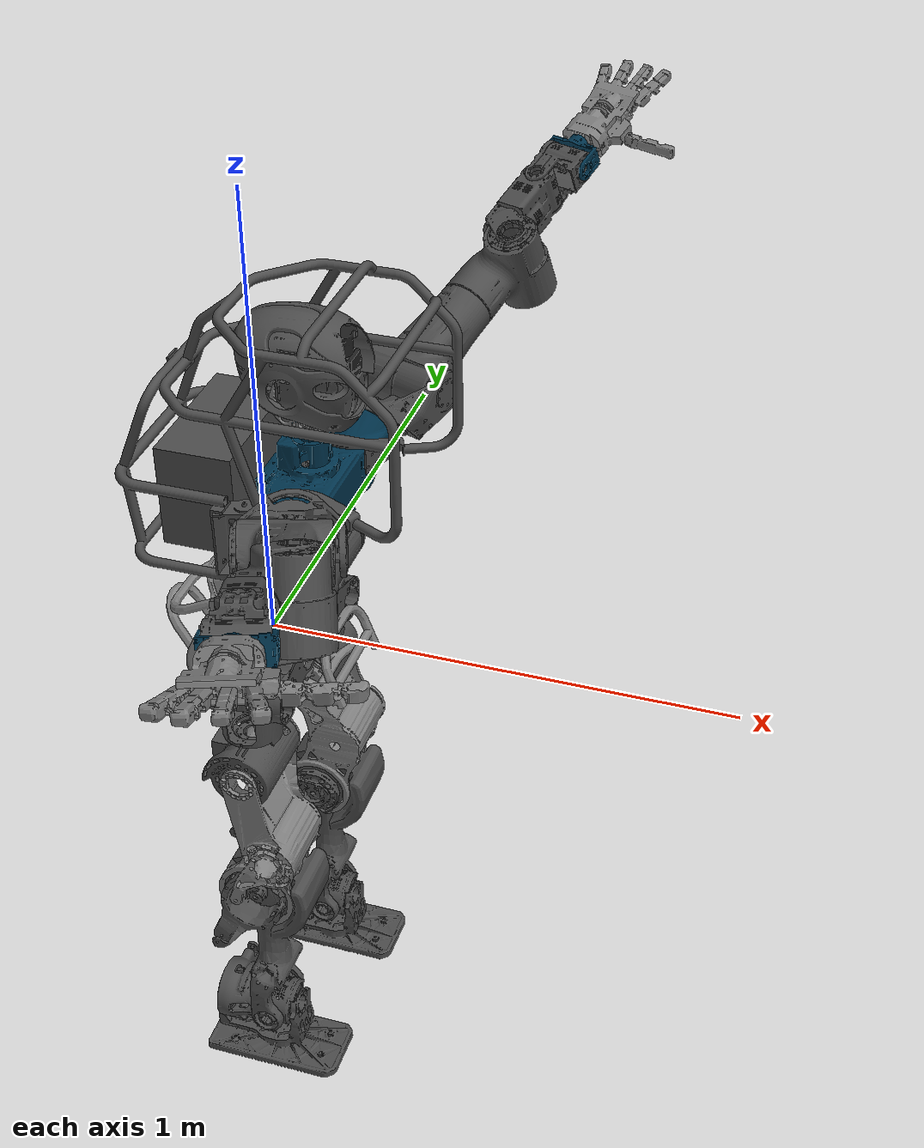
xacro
<?xml version="1.0"?>
<robot xmlns:xacro="http://ros.org/wiki/xacro" name="bigman">

<!-- ************ MODEL CONFIGURATION ************ -->
<xacro:include filename="bigman_config.urdf.xacro" />

<!-- ***********  MODEL COLORS *********** -->
<xacro:include filename="bigman_materials.urdf.xacro" />

<!-- ************ BIGMAN BASE ************** -->
<xacro:include filename="bigman_base.urdf.xacro"/>

<xacro:if value="${BIGMAN_LEGS}">
	<!-- ***** LEGS F/T SENSOR REF FRAMES *******-->
	<link name="l_leg_ft"/>
	<link name="r_leg_ft"/>

	<joint name="l_leg_ft_joint" type="fixed">
	    <parent link="LFoot"/>
	    <child link="l_leg_ft"/>
	    <origin xyz="0.005 0 -0.107" rpy="0 0 0"/>
	</joint>

	<joint name="r_leg_ft_joint" type="fixed">
	    <parent link="RFoot"/>
	    <child link="r_leg_ft"/>
	    <origin xyz="0.005 0 -0.107" rpy="0 0 0"/>
	</joint>
</xacro:if>

<xacro:if value="${BIGMAN_UPPER_BODY}">
	<link name="l_arm_ft"/>
	<link name="r_arm_ft"/>

	<joint name="l_arm_ft_joint" type="fixed">
	    <parent link="LWrMot3"/>
	    <child link="l_arm_ft"/>
	    <origin xyz="0 0 -0.0565" rpy="0 0 0" />
	</joint>

	<joint name="r_arm_ft_joint" type="fixed">
	    <parent link="RWrMot3"/>
	    <child link="r_arm_ft"/>
	    <origin xyz="0 0 -0.0565" rpy="0 0 0" />
	</joint>

	<!-- ************ FOREARMS ************ -->
	<!-- This links are defined in order to be compliant with http://www.ros.org/reps/rep-0120.html#coordinate-frames
	and to define the end effectors of the robot -->

	<!-- position and orientation of the arm regardless of the tool (grasping device for instance) attached to it -->
	<link name="l_wrist"/>
	<link name="r_wrist"/>

	<xacro:include filename="parts/forearms.urdf.xacro" />
       <xacro:if value="${BIGMAN_ADD_RAISING_SUPPORT}">
	       <xacro:include filename="parts/forearm_reference_frame.urdf.xacro" />
       </xacro:if>

	<!-- ************ HANDS ************ -->
	<xacro:include filename="parts/soft_hand.urdf.xacro" />

	<!-- multisense_sl_v4 with fixed joints -->
       <xacro:if value="${BIGMAN_HEAD}">
                <joint name="neck_joint" type="fixed">
                     <parent link="NeckPitch"/>
                     <child link="multisense/head"/>
                     <origin xyz="0.08765 0 0.06475" rpy="0 0 0" />
                 </joint>

              <xacro:unless value="${BIGMAN_FIXED_MULTISENSE}">
                     <xacro:include filename="sensors/multisense_sl_simulation.urdf.xacro"/>
              </xacro:unless>
              <xacro:if value="${BIGMAN_FIXED_MULTISENSE}">
                     <xacro:include filename="sensors/multisense_sl.urdf.xacro"/>
              </xacro:if>

       </xacro:if>
</xacro:if>

<xacro:if value="${BIGMAN_LEGS}">
	<!-- IMU -->
	<xacro:include filename="sensors/imu.urdf.xacro"/>
</xacro:if>

</robot>

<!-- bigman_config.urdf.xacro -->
<robot xmlns:xacro="http://ros.org/wiki/xacro" name="BIGMAN">

<xacro:property name="model_name" value="IIT Bigman Ctrl" />
<xacro:property name="model_version" value="0.1" />

<!--
####################################################
##
##  BIGMAN_YARP
##  if "true" the bigman robot is controlled via YARP
##
####################################################
-->
<xacro:property name="BIGMAN_YARP" value="false" />

<!--
####################################################
##
##  BIGMAN_XBOT
##  if "true" the bigman robot is controlled via
##  XBotCore Suite
##
####################################################
-->
<xacro:property name="BIGMAN_XBOT" value="true" />

<xacro:property name="BIGMAN_UPPER_BODY" value="true" />

<xacro:property name="BIGMAN_LEGS" value="true" />

<!--
####################################################
##
##  BIGMAN_OLD_CHEST
##  if "true" the old version of the chest will be
##  used.
##
##
####################################################
-->
<xacro:property name="BIGMAN_OLD_CHEST" value="false" />

<xacro:property name="BIGMAN_FIXED_HANDS" value="true" />

<xacro:property name="BIGMAN_FIXED_MULTISENSE" value="true" />

<xacro:property name="BIGMAN_HEAD" value="true" />

<!--
####################################################
##
##  BIGMAN_ADD_PROTECTIONS
##  if "true" the protections are added to the model.
##
##
####################################################
-->
<xacro:property name="BIGMAN_ADD_PROTECTIONS" value="true" />

<!--
####################################################
##
##  BIGMAN_ADD_BACKPACK
##  if "true" the backpack is added to the model.
##
##
####################################################
-->
<xacro:property name="BIGMAN_ADD_BACKPACK" value="true" />

<xacro:property name="BIGMAN_ADD_RAISING_SUPPORT" value="false" />

<xacro:property name="BIGMAN_NEW_FEET" value="true" />

<xacro:property name="BIGMAN_SAFETY_JOINT_LIMITS_ARMS" value="false" />
<xacro:property name="BIGMAN_SAFETY_JOINT_LIMITS_TORSO" value="false" />

</robot>

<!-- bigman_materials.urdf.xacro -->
<robot xmlns:xacro="http://ros.org/wiki/xacro">

<material name="grey">
  <color rgba="0.5 0.5 0.5 1"/>
</material>

<material name="dark_grey">
  <color rgba="0.3 0.3 0.3 1"/>
</material>

<material name="blue">
  <color rgba="0.0 0.2 0.3 1"/>
</material>

</robot>

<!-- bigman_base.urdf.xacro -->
<robot xmlns:xacro="http://ros.org/wiki/xacro">

<link name="base_link"/>

<link name="Waist">
    <inertial>
      <origin xyz="${-2.2813402e+01*mmTom} ${-7.3935443e-01*mmTom} ${3.0422909e+01*mmTom}" rpy="0.0 0.0 0.0"/>
      <mass value="1.1046081e+01"/>
      <inertia ixx="${9.6207978e+04*mm2Tom2}"  ixy="${1.4081043e+02*mm2Tom2}"  ixz="${3.1258127e+03*mm2Tom2}" iyy="${9.8511158e+04*mm2Tom2}" iyz="${1.3938149e+02*mm2Tom2}" izz="${8.6541531e+04*mm2Tom2}" />
    </inertial>
    <visual>
      <origin xyz="0 0 0" rpy="0 0 0"/>
      <geometry name="Waist_visual">
        <mesh filename="meshes/Waist.STL" scale="0.001 0.001 0.001"/>
      </geometry>
      <material name="grey"/>
    </visual>
    <collision>
      <origin xyz="0 0 0" rpy="0 0 0"/>
      <geometry name="Waist_collision">
        <mesh filename="meshes/simple/Waist.STL" scale="0.001 0.001 0.001"/>
      </geometry>
    </collision>
</link>

<joint name="base_joint" type="fixed">
    <parent link="base_link"/>
    <child link="Waist"/>
    <origin xyz="0 0 0" rpy="0 0 0" />
</joint>

<xacro:if value="${BIGMAN_LEGS}">
       <xacro:unless value="${BIGMAN_UPPER_BODY}">
		<!-- ********************FAKE TORSO******************** -->
		<xacro:include filename="parts/pelvis_weight_bench.urdf.xacro" />
       </xacro:unless>
</xacro:if>

<xacro:if value="${BIGMAN_UPPER_BODY}">
       <!-- ********************TORSO******************** -->
       <!-- first real link of the robot, inertial reference frame -->
       <xacro:include filename="parts/torso.urdf.xacro" />

       <!-- ********************NECK********************* -->
       <xacro:include filename="parts/neck.urdf.xacro" />
</xacro:if>

<xacro:if value="${BIGMAN_LEGS}">
	<!-- ********************LEGS******************** -->
	<!-- This links are defined in order to be compliant with http://www.ros.org/reps/rep-0120.html#coordinate-frames
	and to define the end effectors of the robot -->

	<!--  position and orientation of the leg regardless of the support body geometry -->
	  <link name="l_ankle"/>
	  <link name="r_ankle"/>

	  <link name="l_sole"/>
	  <link name="r_sole"/>

	  <link name="l_toe"/>
	  <link name="r_toe"/>

	<xacro:include filename="parts/legs.urdf.xacro" />

  	<joint name="l_ankle_joint" type="fixed">
	     <parent link="LFoot"/>
	     <child link="l_ankle"/>
	     <origin xyz="0 0 0" rpy="0 0 0" />
        </joint>

	  <joint name="r_ankle_joint" type="fixed">
	    <parent link="RFoot"/>
	    <child link="r_ankle"/>
	    <origin xyz="0 0 0" rpy="0 0 0" />
	  </joint>

	  <joint name="l_sole_joint" type="fixed">
	    <parent link="LFoot"/>
	    <child link="l_sole"/>
	    <origin xyz="0 0 -0.1435" rpy="0 0 0" />
	  </joint>

	  <joint name="r_sole_joint" type="fixed">
	    <parent link="RFoot"/>
	    <child link="r_sole"/>
	    <origin xyz="0 0 -0.1435" rpy="0 0 0" />
	  </joint>

	  <joint name="l_toe_joint" type="fixed">
	    <parent link="l_sole"/>
	    <child link="l_toe"/>
           <xacro:unless value="${BIGMAN_NEW_FEET}">
	      <origin xyz="0.195 0 0" rpy="0 0 0" />
           </xacro:unless>
           <xacro:if value="${BIGMAN_NEW_FEET}">
	      <origin xyz="0.16 0 0" rpy="0 0 0" />
           </xacro:if>
	  </joint>

	  <joint name="r_toe_joint" type="fixed">
	    <parent link="r_sole"/>
	    <child link="r_toe"/>
	    <xacro:unless value="${BIGMAN_NEW_FEET}">
	      <origin xyz="0.195 0 0" rpy="0 0 0" />
           </xacro:unless>
           <xacro:if value="${BIGMAN_NEW_FEET}">
	      <origin xyz="0.16 0 0" rpy="0 0 0" />
           </xacro:if>
	  </joint>

	<!-- Reference frames in feet -->
	<xacro:include filename="parts/foot_reference_frame.urdf.xacro" />
</xacro:if>

<xacro:if value="${BIGMAN_UPPER_BODY}">
       <!-- ********************ARMS******************** -->
       <xacro:include filename="parts/arms.urdf.xacro" />
</xacro:if>

</robot>

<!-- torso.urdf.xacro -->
<robot xmlns:xacro="http://ros.org/wiki/xacro">

<xacro:property name="mmTom" value="0.001" />
<xacro:property name="mm2Tom2" value="${0.001*0.001}" />

<xacro:property name="PI" value="3.14159265359" />
<xacro:property name="PI_2" value="1.57079632679" />
<xacro:property name="SF" value="0.03937" /> <!-- Scale factor for meshes -->

<xacro:property name="cos_26" value="0.89879991307" />
<xacro:property name="sin_26" value="0.43835911792" />

<xacro:property name="toRad" value="${PI/180.0}" />

<!-- LINKS -->
<!-- This links are defined in order to be compliant with http://www.ros.org/reps/rep-0120.html#coordinate-frames
and to define the end effectors of the robot-->

<!-- The coordinate frame called torso is attached to the lowest body of the model which is a parent of l_gripper, r_gripper and gaze. -->
 <link name="torso"/>

  <link name ="DWL">
    <inertial>
      <origin xyz="-0.04610869 0.02232230 -0.02249514" rpy="0 0 0"/>
      <mass value="1.44965471"/>
      <inertia ixx="0.01096760"  ixy="0.00111556"  ixz="0.00030030" iyy="0.00409572" iyz="0.00054456" izz="0.01143795" />
    </inertial>
    <visual>
      <origin xyz="0.0 0.0 0.0" rpy="0 0 0"/>
      <geometry name="DWL_visual">
        <mesh filename="meshes/TorsoRoll.STL" scale="0.001 0.001 0.001" />
      </geometry>
      <material name="dark_grey"/>
    </visual>
    <collision>
      <origin xyz="0.0 0.0 0.0" rpy="0 0 0"/>
      <geometry name="DWL_collision">
        <mesh filename="meshes/simple/TorsoRoll.STL" scale="0.001 0.001 0.001" />
      </geometry>
    </collision>
  </link>

  <link name ="DWS">
    <inertial>
      <origin xyz="0.00010203 0.00928164 0.08113610" rpy="0 0 0"/>
      <mass value="5.28825567"/>
      <inertia ixx="0.01628069"  ixy="-0.00000323"  ixz="0.00001424" iyy="0.01424286" iyz="0.00075458" izz="0.00994169" />
    </inertial>
    <visual>
      <origin xyz="0.0 0.0 0.0" rpy="0 0 0"/>
      <geometry name="DWS_visual">
        <mesh filename="meshes/TorsoYawPitch.STL" scale="0.001 0.001 0.001" />
      </geometry>
      <material name="dark_grey"/>
    </visual>
    <collision>
      <origin xyz="0.0 0.0 0.0" rpy="0 0 0"/>
      <geometry name="DWS_collision">
        <mesh filename="meshes/simple/TorsoYawPitch.STL" scale="0.001 0.001 0.001" />
      </geometry>
    </collision>
  </link>

  <link name ="DWYTorso">
    <inertial>
        <origin xyz="0.0 0.00 0.3" rpy="0 0 0"/>
        <mass value="26"/>
      <inertia ixx="0.18629757"  ixy="0.00008160"  ixz="0.00030250" iyy="0.02013829" iyz="-0.00001790" izz="0.18850541" />
    </inertial>
    <visual>
      <origin xyz="0.0 0.0 0.0" rpy="0 0 0"/>
      <geometry name="DWYTorso_visual">
<xacro:if value="${BIGMAN_OLD_CHEST}">
        <mesh filename="meshes/Chest.STL" scale="0.001 0.001 0.001" />
</xacro:if>
<xacro:unless value="${BIGMAN_OLD_CHEST}">
        <mesh filename="meshes/NewChest.STL" scale="0.001 0.001 0.001" />
</xacro:unless>
      </geometry>
      <material name="blue"/>
    </visual>
    <collision>
      <origin xyz="0.0 0.0 0.0" rpy="0 0 0"/>
      <geometry name="DWYTorso_collision">
<xacro:if value="${BIGMAN_OLD_CHEST}">
        <mesh filename="meshes/simple/Chest.STL" scale="0.001 0.001 0.001" />
</xacro:if>
<xacro:unless value="${BIGMAN_OLD_CHEST}">
        <mesh filename="meshes/simple/NewChest.STL" scale="0.001 0.001 0.001" />
</xacro:unless>
      </geometry>
    </collision>
  </link>

<!-- UPDATE DATA FOR TORSO PROTECTION! -->
<xacro:if value="${BIGMAN_ADD_PROTECTIONS}">
<link name ="TorsoProtections">
    <inertial>
      <origin xyz="${-8.2963193e+01*mmTom} ${7.0747291e-04*mmTom} ${7.5409106e+01*mmTom}" rpy="0 0 0"/>
      <mass value="4.7"/>
      <inertia ixx="${1.4773769e+05*mm2Tom2}"  ixy="${0.0*mm2Tom2}"  ixz="${-2.9780072e+04*mm2Tom2}" iyy="${1.6085511e+05*mm2Tom2}" iyz="${0.0*mm2Tom2}" izz="${1.5409381e+05*mm2Tom2}" />
    </inertial>
    <visual>
      <origin xyz="0.0 0.0 0.0" rpy="0 0 0"/>
      <geometry name="TorsoProtections_visual">
        <mesh filename="meshes/ProtectionSystem.STL" scale="0.001 0.001 0.001" />
      </geometry>
      <material name="dark_grey"/>
    </visual>
    <collision>
      <origin xyz="0.0 0.0 0.0" rpy="0 0 0"/>
      <geometry name="TorsoProtections_collision">
        <mesh filename="meshes/simple/ProtectionSystem.STL" scale="0.001 0.001 0.001" />
      </geometry>
    </collision>
  </link>
</xacro:if>

<!-- UPDATE DATA FOR TORSO PROTECTION! -->
<xacro:if value="${BIGMAN_ADD_BACKPACK}">
<link name="backpack">
    <inertial>
      <origin xyz="0 0 -0.065" rpy="0 0 0"/>
      <mass value="10.0"/>
      <inertia ixx="${(10.0/12.0)*(0.3*0.3+0.13*0.13)}"  ixy="0.0"  ixz="0.0" iyy="${(10.0/12.0)*(0.16*0.16+0.13*0.13)}" iyz="0.0" izz="${(10.0/12.0)*(0.16*0.16+0.3*0.3)}" />
    </inertial>
    <visual>
      <origin xyz="0.0 0.0 0.0" rpy="0 0 0"/>
      <geometry name="backpack_visual">
        <box size="0.16 0.3 0.22" />
      </geometry>
      <material name="dark_grey"/>
    </visual>
    <collision>
      <origin xyz="0.0 0.0 0.0" rpy="0 0 0"/>
      <geometry name="backpack_collision">
        <box size="0.16 0.3 0.22" />
      </geometry>
    </collision>
</link>
</xacro:if>

<!-- JOINTS -->
<xacro:if value="${BIGMAN_ADD_BACKPACK}">
<joint name="backpack_joint" type="fixed">
    <parent link="DWYTorso"/>
    <child link="backpack"/>
    <origin xyz="-0.185 0 -0.025" rpy="0 0 0" />
</joint>
</xacro:if>

<xacro:if value="${BIGMAN_ADD_PROTECTIONS}">
<joint name="torso_protection_joint" type="fixed">
    <parent link="DWYTorso"/>
    <child link="TorsoProtections"/>
    <origin xyz="0.0 0 0.0" rpy="0 0 0" />
</joint>
</xacro:if>

<joint name="torso_joint" type="fixed">
    <parent link="DWYTorso"/>
    <child link="torso"/>
    <origin xyz="0.0 0 0.0" rpy="0 0 0" />
</joint>

<joint name="WaistLat" type="revolute">
    <parent link="Waist"/>
    <child link="DWL"/>
    <origin xyz="0.1115 0 0.195982" rpy="0 0 0" />
    <axis xyz="${cos_26} 0 ${sin_26}" />
    <xacro:if value="${BIGMAN_SAFETY_JOINT_LIMITS_TORSO}">
    	<limit velocity="6.283" effort="120" lower="${-15.0*toRad}" upper="${15.0*toRad}" />
    </xacro:if>
    <xacro:unless value="${BIGMAN_SAFETY_JOINT_LIMITS_TORSO}">
    	<limit velocity="6.283" effort="120" lower="${-35.0*toRad}" upper="${35.0*toRad}" />
    </xacro:unless>
    <dynamics friction="0" damping="3.0"/>
</joint>

  <joint name="WaistSag" type="revolute">
    <parent link="DWL"/>
    <child link="DWS"/>
    <origin xyz="0 0 0" rpy="0 0 0" />
    <axis xyz="0 1 0" />
    <xacro:if value="${BIGMAN_SAFETY_JOINT_LIMITS_TORSO}">
    	<limit velocity="6.283" effort="220" lower="${-10.0*toRad}" upper="${40.0*toRad}" />
    </xacro:if>
    <xacro:unless value="${BIGMAN_SAFETY_JOINT_LIMITS_TORSO}">
    	<limit velocity="6.283" effort="220" lower="${-20.0*toRad}" upper="${80.0*toRad}" />
    </xacro:unless>
    <dynamics friction="0" damping="3.0"/>
  </joint>

  <joint name="WaistYaw" type="revolute">
    <parent link="DWS"/>
    <child link="DWYTorso"/>
    <origin xyz="0 0 0.22275" rpy="0 0 0" />
    <axis xyz="0 0 1" />
    <xacro:if value="${BIGMAN_SAFETY_JOINT_LIMITS_TORSO}">
    	<limit velocity="6.283" effort="120" lower="${-100.0*toRad}" upper="${100.0*toRad}" />
    </xacro:if>
    <xacro:unless value="${BIGMAN_SAFETY_JOINT_LIMITS_TORSO}">
    	<limit velocity="6.283" effort="120" lower="${-163.0*toRad}" upper="${163.0*toRad}" />
    </xacro:unless>
    <dynamics friction="0" damping="3.0"/>
  </joint>

</robot>

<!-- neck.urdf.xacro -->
<robot xmlns:xacro="http://ros.org/wiki/xacro">

<xacro:property name="mmTom" value="0.001" />
<xacro:property name="mm2Tom2" value="${0.001*0.001}" />

<xacro:property name="PI" value="3.14159265359" />
<xacro:property name="PI_2" value="1.57079632679" />

<xacro:property name="cos_26" value="0.89879991307" />
<xacro:property name="sin_26" value="0.43835911792" />

<xacro:property name="toRad" value="${PI/180.0}" />

<!-- LINKS -->
  <link name ="NeckYaw">
    <inertial>
      <origin xyz="0.0 0.0 ${1.1550000e+02*mmTom}" rpy="0 0 0"/>
      <mass value="0.35"/>
      <inertia ixx="${3.2840119e+02*mm2Tom2}"  ixy="0.0"  ixz="0.0" iyy="${7.0371675e+01*mm2Tom2}" iyz="0.0" izz="${3.2840111e+02*mm2Tom2}" />
    </inertial>
    <visual>
      <origin xyz="0.0 0.0 0.0" rpy="0 0 0"/>
      <geometry name="NeckYaw_visual">
        <mesh filename="meshes/NeckYaw.STL" scale="0.001 0.001 0.001" />
      </geometry>
      <material name="grey"/>
    </visual>
    <collision>
      <origin xyz="0.0 0.0 0.0" rpy="0 0 0"/>
      <geometry name="NeckYaw_collision">
        <mesh filename="meshes/simple/NeckYaw.STL" scale="0.001 0.001 0.001" />
      </geometry>
    </collision>
  </link>

  <link name ="NeckPitch">
    <inertial>
      <origin xyz="${-1.020e+02*mmTom} 0.0 ${2.6575000e+02*mmTom}" rpy="0 0 0"/>
      <mass value="0.623"/>
      <inertia ixx="${1.0388333e+03*mm2Tom2}"  ixy="0.0"  ixz="0.0" iyy="${5.4689381e+02*mm2Tom2}" iyz="0.0" izz="${5.4689381e+02*mm2Tom2}" />
    </inertial>
    <visual>
      <origin xyz="0.0 0.0 0.0" rpy="0 0 0"/>
      <geometry name="NeckPitch_visual">
        <mesh filename="meshes/NeckPitch.STL" scale="0.001 0.001 0.001" />
      </geometry>
      <material name="grey"/>
    </visual>
    <collision>
      <origin xyz="0.0 0.0 0.0" rpy="0 0 0"/>
      <geometry name="NeckPitch_collision">
        <mesh filename="meshes/simple/NeckPitch.STL" scale="0.001 0.001 0.001" />
      </geometry>
    </collision>
  </link>

<!-- JOINTS -->
<joint name="NeckYawj" type="revolute">
    <parent link="DWYTorso"/>
    <child link="NeckYaw"/>
    <origin xyz="0 0 0" rpy="0 0 0" />
    <axis xyz="0 0 1" />
    <limit velocity="6.283" effort="120" lower="${(-35.0)*toRad}" upper="${(35.0)*toRad}" />
    <dynamics friction="0" damping="3.0"/>
</joint>

<joint name="NeckPitchj" type="revolute">
    <parent link="NeckYaw"/>
    <child link="NeckPitch"/>
    <origin xyz="0 0 0.117" rpy="0 0 0" />
    <axis xyz="0 1 0" />
    <!--limit velocity="6.283" effort="120" lower="${(-30.0)*toRad}" upper="${(70.0)*toRad}" /-->
    <limit velocity="6.283" effort="120" lower="${(-15.0)*toRad}" upper="${(60.0)*toRad}" />
    <dynamics friction="0" damping="3.0"/>
</joint>

</robot>

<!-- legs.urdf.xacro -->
<robot xmlns:xacro="http://ros.org/wiki/xacro">

<xacro:property name="mmTom" value="0.001" />
<xacro:property name="mm2Tom2" value="${0.001*0.001}" />
<xacro:property name="tonsToKg" value="1000.0" />

<xacro:property name="PI" value="3.14159265359" />
<xacro:property name="PI_2" value="1.57079632679" />

<!-- LINKS -->

<!-- ********************RIGHT LEG******************** -->

<link name ="RHipMot">
    <inertial>
      <origin xyz="${-1.0348188e+02*mmTom} ${-1.0919813e+02*mmTom} ${-6.4924056e+01*mmTom}" rpy="0 0 0"/>
      <mass value="${3.7958197e-03*tonsToKg}"/>
      <inertia ixx="${1.5639017e+01*mm2Tom2*tonsToKg}"  ixy="${1.8504661*mm2Tom2*tonsToKg}"  ixz="${2.3907793*mm2Tom2*tonsToKg}" iyy="${2.3519749e+01*mm2Tom2*tonsToKg}" iyz="${-2.3303162*mm2Tom2*tonsToKg}" izz="${2.0953643e+01*mm2Tom2*tonsToKg}" />
    </inertial>
    <visual>
      <origin xyz="0 0 0" rpy="0 0 0"/>
      <geometry name="RHipMot_visual">
        <mesh filename="meshes/HipRoll.STL" scale="0.001 0.001 0.001" />
      </geometry>
      <material name="dark_grey"/>
    </visual>
    <collision>
      <origin xyz="0 0 0" rpy="0 0 0"/>
      <geometry name="RHipMot_collision">
        <mesh filename="meshes/simple/HipRoll.STL" scale="0.001 0.001 0.001" />
      </geometry>
    </collision>
</link>

  <link name ="RThighUpLeg">
    <inertial>
      <origin xyz="${-5.2929709*mmTom} ${-2.2561833e+01*mmTom} ${5.6701669*mmTom}" rpy="0 0 0"/>
      <mass value="3.2402068"/>
      <inertia ixx="${1.0102097e+04*mm2Tom2}"  ixy="${1.0858487e+02*mm2Tom2}"  ixz="${2.5291395e+02*mm2Tom2}" iyy="${6.7147000e+03*mm2Tom2}" iyz="${8.3447072e+01*mm2Tom2}" izz="${1.0485130e+04*mm2Tom2}" />
    </inertial>
    <visual>
      <origin xyz="0 0 0" rpy="0 0 0"/>
      <geometry name="RThighUpLeg_visual">
        <mesh filename="meshes/HipYaw.STL" scale="0.001 0.001 0.001" />
      </geometry>
      <material name="dark_grey"/>
    </visual>
    <collision>
      <origin xyz="0 0 0" rpy="0 0 0"/>
      <geometry name="RThighUpLeg_collision">
        <mesh filename="meshes/simple/HipYaw.STL" scale="0.001 0.001 0.001" />
      </geometry>
    </collision>
  </link>

  <link name ="RThighLowLeg">
    <inertial>
      <origin xyz="${3.7746286e+01*mmTom} ${-2.8539939e+01*mmTom} ${-1.9310133e+02*mmTom}" rpy="0 0 0"/>
      <mass value="5.0950736"/>
      <inertia ixx="${5.1607858e+04*mm2Tom2}"  ixy="${2.2253472e+03*mm2Tom2}"  ixz="${2.4529790e+03*mm2Tom2}" iyy="${4.4349153e+04*mm2Tom2}" iyz="${-4.1006942e+03*mm2Tom2}" izz="${2.3374453e+04*mm2Tom2}" />
    </inertial>
    <visual>
      <origin xyz="0 0 0" rpy="0 0 0"/>
      <geometry name="RThighLowLeg_visual">
        <mesh filename="meshes/HipPitch.STL" scale="0.001 0.001 0.001" />
      </geometry>
      <material name="grey"/>
    </visual>
    <collision>
      <origin xyz="0 0 0" rpy="0 0 0"/>
      <geometry name="RThighLowLeg_collision">
        <mesh filename="meshes/simple/HipPitch.STL" scale="0.001 0.001 0.001" />
      </geometry>
    </collision>
  </link>

  <link name ="RLowLeg">
    <inertial>
      <origin xyz="${-5.0828668*mmTom} ${3.7732093*mmTom} ${-7.2605017e+01*mmTom}" rpy="0 0 0"/>
      <mass value="5.6495309"/>
      <inertia ixx="${1.0535542e+05*mm2Tom2}"  ixy="${-5.8199221e+02*mm2Tom2}"  ixz="${1.6743598e+03*mm2Tom2}" iyy="${9.7857796e+04*mm2Tom2}" iyz="${-3.3770181e+03*mm2Tom2}" izz="${2.0854086e+04*mm2Tom2}" />
    </inertial>
    <visual>
      <origin xyz="0 0 0" rpy="0 0 0"/>
      <geometry name="RLowLeg_visual">
        <mesh filename="meshes/KneePitchCalf.STL" scale="0.001 0.001 0.001" />
      </geometry>
      <material name="dark_grey"/>
    </visual>
    <collision>
      <origin xyz="0 0 0" rpy="0 0 0"/>
      <geometry name="RLowLeg_collision">
        <mesh filename="meshes/simple/KneePitchCalf.STL" scale="0.001 0.001 0.001" />
      </geometry>
    </collision>
  </link>

  <link name ="RFootmot">
    <inertial>
      <origin xyz="${-2.2024173e+01*mmTom} ${2.5677238*mmTom} ${9.4588455e-01*mmTom}" rpy="0 0 0"/>
      <mass value="3.2844159"/>
      <inertia ixx="${7.5550679e+03*mm2Tom2}"  ixy="${6.7488292e+02*mm2Tom2}"  ixz="${5.8332889e+01*mm2Tom2}" iyy="${1.1241163e+04*mm2Tom2}" iyz="${-1.4552081e+02*mm2Tom2}" izz="${1.3391865e+04*mm2Tom2}" />
    </inertial>
    <visual>
      <origin xyz="0 0 0" rpy="0 0 0"/>
      <geometry name="RFootmot_visual">
        <mesh filename="meshes/AnklePitch.STL" scale="0.001 0.001 0.001" />
      </geometry>
      <material name="dark_grey"/>
    </visual>
    <collision>
      <origin xyz="0 0 0" rpy="0 0 0"/>
      <geometry name="RFootmot_collision">
        <mesh filename="meshes/simple/AnklePitch.STL" scale="0.001 0.001 0.001" />
      </geometry>
    </collision>
  </link>

  <link name ="RFoot">
     <inertial>
        <xacro:if value="${BIGMAN_NEW_FEET}">
          <origin xyz="-0.00653584 -0.00479384 -0.10180375" rpy="0 0 0"/>
          <mass value="3.42638110"/>
          <inertia ixx="0.01032886"  ixy="-0.00016407"  ixz="-0.00201294" iyy="0.02854025" iyz="0.00046315" izz="0.02799499" />
        </xacro:if>
        <xacro:unless value="${BIGMAN_NEW_FEET}">
          <origin xyz="0.01282904 -0.00463694 -0.10109499" rpy="0 0 0"/>
          <mass value="3.33109981"/>
          <inertia ixx="0.01006627"  ixy="-0.00051955"  ixz="-0.00374069" iyy="0.02882577" iyz="0.00044505" izz="0.02819025" />
        </xacro:unless>
      </inertial>
    <visual>
      <origin xyz="0 0 0" rpy="0 0 0"/>
      <geometry name="RFoot_visual">
        <xacro:if value="${BIGMAN_NEW_FEET}">
              <mesh filename="meshes/NewFoot.STL" scale="0.001 0.001 0.001"/>
        </xacro:if>
        <xacro:unless value="${BIGMAN_NEW_FEET}">
              <mesh filename="meshes/Foot.STL" scale="0.001 -0.001 0.001"/>
        </xacro:unless>
      </geometry>
      <material name="dark_grey"/>
    </visual>
    <collision>
     <xacro:if value="${BIGMAN_NEW_FEET}">
       <origin xyz="0.005 -0.01 -0.1359" rpy="0 0 0"/>
       <geometry>
         <box size="0.32 0.16 0.015" />
       </geometry>
     </xacro:if>
     <xacro:unless value="${BIGMAN_NEW_FEET}">
       <origin xyz="0.047 -0.01 -0.1359" rpy="0 0 0"/>
       <geometry>
         <box size="0.306 0.16 0.015" />
       </geometry>
     </xacro:unless>
    </collision>
  </link>

<!-- ********************LEFT LEG******************** -->
  <link name ="LHipMot">
    <inertial>
      <origin xyz="${-1.0348188e+02*mmTom} ${1.0919813e+02*mmTom} ${-6.4924056e+01*mmTom}" rpy="0 0 0"/>
      <mass value="${3.7958197e-03*tonsToKg}"/>
      <inertia ixx="${1.5639017e+01*mm2Tom2*tonsToKg}"  ixy="${-1.8504661*mm2Tom2*tonsToKg}"  ixz="${2.3907793*mm2Tom2*tonsToKg}" iyy="${2.3519749e+01*mm2Tom2*tonsToKg}" iyz="${2.3303162*mm2Tom2*tonsToKg}" izz="${2.0953643e+01*mm2Tom2*tonsToKg}" />
    </inertial>
    <visual>
      <origin xyz="0 0 0" rpy="0 0 0"/>
      <geometry name="LHipMot_visual">
        <mesh filename="meshes/HipRoll.STL" scale="0.001 -0.001 0.001" />
      </geometry>
      <material name="dark_grey"/>
    </visual>
    <collision>
      <origin xyz="0 0 0" rpy="0 0 0"/>
      <geometry name="LHipMot_collision">
        <mesh filename="meshes/simple/HipRoll.STL" scale="0.001 -0.001 0.001" />
      </geometry>
    </collision>
  </link>

  <link name ="LThighUpLeg">
    <inertial>
      <origin xyz="${-5.2929709*mmTom} ${2.2561833e+01*mmTom} ${5.6701669*mmTom}" rpy="0 0 0"/>
      <mass value="3.2402068"/>
      <inertia ixx="${1.0102097e+04*mm2Tom2}"  ixy="${-1.0858487e+02*mm2Tom2}"  ixz="${2.5291395e+02*mm2Tom2}" iyy="${6.7147000e+03*mm2Tom2}" iyz="${-8.3447072e+01*mm2Tom2}" izz="${1.0485130e+04*mm2Tom2}" />
    </inertial>
    <visual>
      <origin xyz="0 0 0" rpy="0 0 0"/>
      <geometry name="LThighUpLeg_visual">
        <mesh filename="meshes/HipYaw.STL" scale="0.001 -0.001 0.001" />
      </geometry>
      <material name="dark_grey"/>
    </visual>
    <collision>
      <origin xyz="0 0 0" rpy="0 0 0"/>
      <geometry name="LThighUpLeg_collision">
        <mesh filename="meshes/simple/HipYaw.STL" scale="0.001 -0.001 0.001" />
      </geometry>
    </collision>
  </link>

  <link name ="LThighLowLeg">
    <inertial>
      <origin xyz="${3.7746286e+01*mmTom} ${2.8539939e+01*mmTom} ${-1.9310133e+02*mmTom}" rpy="0 0 0"/>
      <mass value="5.0950736"/>
      <inertia ixx="${5.1607858e+04*mm2Tom2}"  ixy="${-2.2253472e+03*mm2Tom2}"  ixz="${2.4529790e+03*mm2Tom2}" iyy="${4.4349153e+04*mm2Tom2}" iyz="${4.1006942e+03*mm2Tom2}" izz="${2.3374453e+04*mm2Tom2}" />
    </inertial>
    <visual>
      <origin xyz="0 0 0" rpy="0 0 0"/>
      <geometry name="LThighLowLeg_visual">
        <mesh filename="meshes/HipPitch.STL" scale="0.001 -0.001 0.001" />
      </geometry>
      <material name="grey"/>
    </visual>
    <collision>
      <origin xyz="0 0 0" rpy="0 0 0"/>
      <geometry name="LThighLowLeg_collision">
        <mesh filename="meshes/simple/HipPitch.STL" scale="0.001 -0.001 0.001" />
      </geometry>
    </collision>
  </link>

  <link name ="LLowLeg">
    <inertial>
      <origin xyz="${-5.0828668*mmTom} ${-3.7732093*mmTom} ${-7.2605017e+01*mmTom}" rpy="0 0 0"/>
      <mass value="5.6495309"/>
      <inertia ixx="${1.0535542e+05*mm2Tom2}"  ixy="${5.8199221e+02*mm2Tom2}"  ixz="${1.6743598e+03*mm2Tom2}" iyy="${9.7857796e+04*mm2Tom2}" iyz="${3.3770181e+03*mm2Tom2}" izz="${2.0854086e+04*mm2Tom2}" />
    </inertial>
    <visual>
      <origin xyz="0 0 0" rpy="0 0 0"/>
      <geometry name="LLowLeg_visual">
        <mesh filename="meshes/KneePitchCalf.STL" scale="0.001 -0.001 0.001" />
      </geometry>
      <material name="dark_grey"/>
    </visual>
    <collision>
      <origin xyz="0 0 0" rpy="0 0 0"/>
      <geometry name="LLowLeg_collision">
        <mesh filename="meshes/simple/KneePitchCalf.STL" scale="0.001 -0.001 0.001" />
      </geometry>
    </collision>
  </link>

  <link name ="LFootmot">
    <inertial>
      <origin xyz="${-2.2024173e+01*mmTom} ${-2.5677238*mmTom} ${9.4588455e-01*mmTom}" rpy="0 0 0"/>
      <mass value="3.2844159"/>
      <inertia ixx="${7.5550679e+03*mm2Tom2}"  ixy="${-6.7488292e+02*mm2Tom2}"  ixz="${5.8332889e+01*mm2Tom2}" iyy="${1.1241163e+04*mm2Tom2}" iyz="${1.4552081e+02*mm2Tom2}" izz="${1.3391865e+04*mm2Tom2}" />
    </inertial>
    <visual>
      <origin xyz="0 0 0" rpy="0 0 0"/>
      <geometry name="LFootmot_visual">
        <mesh filename="meshes/AnklePitch.STL" scale="0.001 -0.001 0.001" />
      </geometry>
      <material name="dark_grey"/>
    </visual>
    <collision>
      <origin xyz="0 0 0" rpy="0 0 0"/>
      <geometry name="LFootmot_collision">
        <mesh filename="meshes/simple/AnklePitch.STL" scale="0.001 -0.001 0.001" />
      </geometry>
    </collision>
  </link>

  <link name ="LFoot">
      <inertial>
        <xacro:if value="${BIGMAN_NEW_FEET}">
          <origin xyz="-0.00653584 0.00479384 -0.10180375" rpy="0 0 0"/>
          <mass value="3.42638110"/>
          <inertia ixx="0.01032886"  ixy="0.00016407"  ixz="-0.00201294" iyy="0.02854025" iyz="-0.00046315" izz="0.02799499" />
        </xacro:if>
        <xacro:unless value="${BIGMAN_NEW_FEET}">
          <origin xyz="0.01282904 0.00463694 -0.10109499" rpy="0 0 0"/>
          <mass value="3.33109981"/>
          <inertia ixx="0.01006627"  ixy="0.00051955"  ixz="-0.00374069" iyy="0.02882577" iyz="-0.00044505" izz="0.02819025" />
        </xacro:unless>
      </inertial>
      <visual>
      <origin xyz="0 0 0" rpy="0 0 0"/>
      <geometry name="LFoot_visual">
        <xacro:if value="${BIGMAN_NEW_FEET}">
              <mesh filename="meshes/NewFoot.STL" scale="0.001 -0.001 0.001"/>
        </xacro:if>
        <xacro:unless value="${BIGMAN_NEW_FEET}">
              <mesh filename="meshes/Foot.STL" scale="0.001 0.001 0.001"/>
        </xacro:unless>
      </geometry>
      <material name="dark_grey"/>
    </visual>
    <collision>
     <xacro:if value="${BIGMAN_NEW_FEET}">
       <origin xyz="0.005 0.01 -0.1359" rpy="0 0 0"/>
       <geometry>
        <box size="0.32 0.16 0.015" />
       </geometry>
     </xacro:if>
     <xacro:unless value="${BIGMAN_NEW_FEET}">
       <origin xyz="0.047 0.01 -0.1359" rpy="0 0 0"/>
       <geometry>
        <box size="0.306 0.16 0.015" />
       </geometry>
     </xacro:unless>
    </collision>
   </link>

<!-- JOINTS -->

<!-- ********************RIGHT LEG******************** -->

  <joint name="RHipLat" type="revolute">
    <parent link="Waist"/>
    <child link="RHipMot"/>
    <origin xyz="0.1059 -0.06 0.0" rpy="0 0 0" />
    <axis xyz="1 0 0" />
    <limit velocity="6.283" effort="400" lower="-0.87222" upper="0.697778" />
    <dynamics friction="0" damping="3.0"/>
  </joint>

  <joint name="RHipYaw" type="revolute">
    <parent link="RHipMot"/>
    <child link="RThighUpLeg"/>
    <origin xyz="-0.0889 -0.121032 -0.217872" rpy="0 0 0" />
    <axis xyz="0 0 1" />
    <limit velocity="6.283" effort="140" lower="-1.57" upper="0.872222" />
    <dynamics friction="0" damping="3.0"/>
  </joint>

  <joint name="RHipSag" type="revolute">
    <parent link="RThighUpLeg"/>
    <child link="RThighLowLeg"/>
    <origin xyz="0.0 0.0 0.0" rpy="0 0 0" />
    <axis xyz="0 1 0" />
    <limit velocity="6.283" effort="400" lower="-2.09333" upper="1.046667" />
    <dynamics friction="0" damping="3.0"/>
  </joint>

  <joint name="RKneeSag" type="revolute">
    <parent link="RThighLowLeg"/>
    <child link="RLowLeg"/>
    <origin xyz="0.0 0.0 -0.356" rpy="0 0 0" />
    <axis xyz="0 1 0" />
    <limit velocity="6.283" effort="400" lower="0.0" upper="2.442222" />
    <dynamics friction="0" damping="3.0"/>
  </joint>

  <joint name="RAnkSag" type="revolute">
    <parent link="RLowLeg"/>
    <child link="RFootmot"/>
    <origin xyz="0.0 0.0 -0.4" rpy="0 0 0" />
    <axis xyz="0 1 0" />
    <limit velocity="6.283" effort="330" lower="-1.39556" upper="0.697778" />
    <dynamics friction="0" damping="3.0"/>
  </joint>

    <joint name="RAnkLat" type="revolute">
      <parent link="RFootmot"/>
      <child link="RFoot"/>
      <origin xyz="0.0 0.0 0.0" rpy="0 0 0" />
      <axis xyz="1 0 0" />
      <limit velocity="6.283" effort="210" lower="-0.785" upper="0.785" />
      <dynamics friction="0" damping="3.0"/>
    </joint>

<!-- ********************LEFT LEG******************** -->

  <joint name="LHipLat" type="revolute">
    <parent link="Waist"/>
    <child link="LHipMot"/>
    <origin xyz="0.1059 0.06 0.0" rpy="0 0 0" />
    <axis xyz="1 0 0" />
    <limit velocity="6.283" effort="400" lower="-0.697778" upper="0.87222" />
    <dynamics friction="0" damping="3.0"/>
  </joint>

  <joint name="LHipYaw" type="revolute">
    <parent link="LHipMot"/>
    <child link="LThighUpLeg"/>
    <origin xyz="-0.0889 0.121032 -0.217872" rpy="0 0 0" />
    <axis xyz="0 0 1" />
    <limit velocity="6.283" effort="140" lower="-0.872222" upper="1.57" />
    <dynamics friction="0" damping="3.0"/>
  </joint>

  <joint name="LHipSag" type="revolute">
    <parent link="LThighUpLeg"/>
    <child link="LThighLowLeg"/>
    <origin xyz="0.0 0.0 0.0" rpy="0 0 0" />
    <axis xyz="0 1 0" />
    <limit velocity="6.283" effort="400" lower="-2.09333" upper="1.046667" />
    <dynamics friction="0" damping="3.0"/>
  </joint>

  <joint name="LKneeSag" type="revolute">
    <parent link="LThighLowLeg"/>
    <child link="LLowLeg"/>
    <origin xyz="0.0 0.0 -0.356" rpy="0 0 0" />
    <axis xyz="0 1 0" />
    <limit velocity="6.283" effort="400" lower="0.0" upper="2.442222" />
    <dynamics friction="0" damping="3.0"/>
  </joint>

  <joint name="LAnkSag" type="revolute">
    <parent link="LLowLeg"/>
    <child link="LFootmot"/>
    <origin xyz="0.0 0.0 -0.4" rpy="0 0 0" />
    <axis xyz="0 1 0" />
    <limit velocity="6.283" effort="330" lower="-1.39556" upper="0.697778" />
    <dynamics friction="0" damping="3.0"/>
  </joint>

  <joint name="LAnkLat" type="revolute">
    <parent link="LFootmot"/>
    <child link="LFoot"/>
    <origin xyz="0.0 0.0 0.0" rpy="0 0 0" />
    <axis xyz="1 0 0" />
    <limit velocity="6.283" effort="210" lower="-0.785" upper="0.785" />
    <dynamics friction="0" damping="3.0"/>
  </joint>

</robot>

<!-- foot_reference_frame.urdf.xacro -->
<robot xmlns:xacro="http://ros.org/wiki/xacro">

        <xacro:macro name="reference_frame_foot" params="parent name x y">
	<!-- macro for one reference frame in foot -->
		<link name="${name}_link"/>

		<joint name="${name}_joint" type="fixed">
			<origin xyz="${x} ${y} 0" rpy="0 0 0" />
			<parent link="${parent}"/>
			<child link="${name}_link"/>
		</joint>
	</xacro:macro>

       <xacro:unless value="${BIGMAN_NEW_FEET}">
	       <xacro:macro name="references_frame_foot" params="parent name mirror_y">
	       <!-- macro for reference frames in foot -->
		       <xacro:reference_frame_foot parent="${parent}" name="${name}_upper_right" x="0.195" y="${mirror_y*-0.07}" />
		       <xacro:reference_frame_foot parent="${parent}" name="${name}_upper_left" x="0.195" y="${mirror_y*0.09}" />
		       <xacro:reference_frame_foot parent="${parent}" name="${name}_lower_right" x="-0.111" y="${mirror_y*-0.07}" />
		       <xacro:reference_frame_foot parent="${parent}" name="${name}_lower_left" x="-0.111" y="${mirror_y*0.09}" />
	       </xacro:macro>
       </xacro:unless>
       <xacro:if value="${BIGMAN_NEW_FEET}">
              <xacro:macro name="references_frame_foot" params="parent name mirror_y">
              <!-- macro for reference frames in foot -->
                     <xacro:reference_frame_foot parent="${parent}" name="${name}_upper_right" x="0.16" y="${mirror_y*-0.07}" />
                     <xacro:reference_frame_foot parent="${parent}" name="${name}_upper_left" x="0.16" y="${mirror_y*0.09}" />
                     <xacro:reference_frame_foot parent="${parent}" name="${name}_lower_right" x="-0.16" y="${mirror_y*-0.07}" />
                     <xacro:reference_frame_foot parent="${parent}" name="${name}_lower_left" x="-0.16" y="${mirror_y*0.09}" />
              </xacro:macro>
       </xacro:if>

	<xacro:references_frame_foot parent="l_sole" name="l_foot" mirror_y="1.0"/>
	<xacro:references_frame_foot parent="r_sole" name="r_foot" mirror_y="-1.0"/>

</robot>

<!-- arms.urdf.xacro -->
<robot xmlns:xacro="http://ros.org/wiki/xacro">

<xacro:property name="PI" value="3.14159265359" />
<xacro:property name="cos_42" value="0.743144825" />
<xacro:property name="sin_42" value="0.669130606" />
<xacro:property name="mmTom" value="0.001" />
<xacro:property name="mm2Tom2" value="${0.001*0.001}" />

<xacro:property name="toRad" value="${PI/180.0}" />
<xacro:property name="safety" value="0.0" />

<!-- LINKS -->

<!-- RIGHT ARM -->
<link name ="RShp">
    <inertial>
      <origin xyz="-0.00543349 -0.04480023 0.01581062" rpy="0 0 0"/>
      <mass value="1.81745527"/>
      <inertia ixx="0.00571053"  ixy="0.00041083"  ixz="-0.00005130" iyy="0.01126908" iyz="-0.00003461" izz="0.01371197" />
    </inertial>
    <visual>
      <origin xyz="0 0 0" rpy="0 0 0"/>
      <geometry name="RShp_visual">
        <mesh filename="meshes/ShoulderPitch.STL" scale="0.001 0.001 0.001" />
      </geometry>
      <material name="dark_grey"/>
    </visual>
    <collision>
      <origin xyz="0 0 0" rpy="0 0 0"/>
      <geometry name="RShp_collision">
        <mesh filename="meshes/simple/ShoulderPitch.STL" scale="0.001 0.001 0.001" />
      </geometry>
    </collision>
</link>

<link name ="RShr">
    <inertial>
      <origin xyz="0.00729315 0.00002698 -0.07529696" rpy="0 0 0"/>
      <mass value="5.00486460"/>
      <inertia ixx="0.01644345"  ixy="-0.00001187"  ixz="-0.00010546" iyy="0.01804804" iyz="-0.00000565" izz="0.00802420" />
    </inertial>
    <visual>
      <origin xyz="0 0 0" rpy="0 0 0"/>
      <geometry name="RShr_visual">
        <mesh filename="meshes/TopUpperArm.STL" scale="0.001 0.001 0.001" />
      </geometry>
      <material name="dark_grey"/>
    </visual>
    <collision>
      <origin xyz="0 0 0" rpy="0 0 0"/>
      <geometry name="RShr_collision">
        <mesh filename="meshes/simple/TopUpperArm.STL" scale="0.001 0.001 0.001" />
      </geometry>
    </collision>
</link>

<link name ="RShy">
    <inertial>
      <origin xyz="0.02765373 -0.03258647 -0.12698781" rpy="0 0 0"/>
      <mass value="3.20289133"/>
      <inertia ixx="0.01129046"  ixy="0.00013518"  ixz="-0.00134760" iyy="0.00984951" iyz="-0.00026836" izz="0.00728549" />
    </inertial>
    <visual>
      <origin xyz="0 0 0" rpy="0 0 0"/>
      <geometry name="RShy_visual">
        <mesh filename="meshes/BottomUpperArm.STL" scale="0.001 0.001 0.001" />
      </geometry>
      <material name="dark_grey"/>
    </visual>
    <collision>
      <origin xyz="0 0 0" rpy="0 0 0"/>
      <geometry name="RShy_collision">
        <mesh filename="meshes/simple/BottomUpperArm.STL" scale="0.001 0.001 0.001" />
      </geometry>
    </collision>
</link>

<link name ="RElb">
        <inertial>
          <origin xyz="${-5.5754915e+01*mmTom} ${-7.5826040*mmTom} ${-4.3820396e+01*mmTom}" rpy="0 0 0"/>
          <mass value="8.6765385e-01"/>
          <inertia ixx="${4.0395238e+03*mm2Tom2}"  ixy="${3.4973136e+02*mm2Tom2}"  ixz="${-6.8400465e+02*mm2Tom2}" iyy="${2.2460561e+03*mm2Tom2}" iyz="${2.8844444e+02*mm2Tom2}" izz="${4.4895027e+03*mm2Tom2}" />
        </inertial>
        <visual>
          <origin xyz="0 0 0" rpy="0 0 0"/>
          <geometry name="RElb_visual">
            <mesh filename="meshes/Elbow.STL" scale="0.001 0.001 0.001" />
          </geometry>
	  <material name="dark_grey"/>
        </visual>
        <collision>
          <origin xyz="0 0 0" rpy="0 0 0"/>
          <geometry name="RElb_collision">
            <mesh filename="meshes/simple/Elbow.STL" scale="0.001 0.001 0.001" />
          </geometry>
        </collision>
</link>

<!-- LEFT ARM -->
<link name ="LShp">
    <inertial>
      <origin xyz="-0.00543349 0.04480023 0.01581062" rpy="0 0 0"/>
      <mass value="1.81745527"/>
      <inertia ixx="0.00571053"  ixy="-0.00041083"  ixz="-0.00005130" iyy="0.01126908" iyz="0.00003461" izz="0.01371197" />
    </inertial>
    <visual>
      <origin xyz="0 0 0" rpy="0 0 0"/>
      <geometry name="LShp_visual">
        <mesh filename="meshes/ShoulderPitch.STL" scale="0.001 -0.001 0.001" />
      </geometry>
      <material name="dark_grey"/>
    </visual>
    <collision>
      <origin xyz="0 0 0" rpy="0 0 0"/>
      <geometry name="LShp_collision">
        <mesh filename="meshes/simple/ShoulderPitch.STL" scale="0.001 -0.001 0.001" />
      </geometry>
    </collision>
</link>

<link name ="LShr">
    <inertial>
      <origin xyz="0.00729315 -0.00002698 -0.07529696" rpy="0 0 0"/>
      <mass value="5.00486460"/>
      <inertia ixx="0.01644345"  ixy="0.00001187"  ixz="-0.00010546" iyy="0.01804804" iyz="0.00000565" izz="0.00802420" />
    </inertial>
    <visual>
      <origin xyz="0 0 0" rpy="0 0 0"/>
      <geometry name="LShr_visual">
        <mesh filename="meshes/TopUpperArm.STL" scale="0.001 -0.001 0.001" />
      </geometry>
      <material name="dark_grey"/>
    </visual>
    <collision>
      <origin xyz="0 0 0" rpy="0 0 0"/>
      <geometry name="LShr_collision">
        <mesh filename="meshes/simple/TopUpperArm.STL" scale="0.001 -0.001 0.001" />
      </geometry>
    </collision>
</link>

  <link name ="LShy">
    <inertial>
      <origin xyz="0.02765373 0.03258647 -0.12698781" rpy="0 0 0"/>
      <mass value="3.20289133"/>
      <inertia ixx="0.01129046"  ixy="-0.00013518"  ixz="-0.00134760" iyy="0.00984951" iyz="0.00026836" izz="0.00728549" />
    </inertial>
    <visual>
      <origin xyz="0 0 0" rpy="0 0 0"/>
      <geometry name="LShy_visual">
        <mesh filename="meshes/BottomUpperArm.STL" scale="0.001 -0.001 0.001" />
      </geometry>
      <material name="dark_grey"/>
    </visual>
    <collision>
      <origin xyz="0 0 0" rpy="0 0 0"/>
      <geometry name="LShy_collision">
        <mesh filename="meshes/simple/BottomUpperArm.STL" scale="0.001 -0.001 0.001" />
      </geometry>
    </collision>
  </link>

    <link name ="LElb">
        <inertial>
          <origin xyz="${-5.5754915e+01*mmTom} ${7.5826040*mmTom} ${-4.3820396e+01*mmTom}" rpy="0 0 0"/>
          <mass value="8.6765385e-01"/>
          <inertia ixx="${4.0395238e+03*mm2Tom2}"  ixy="${-3.4973136e+02*mm2Tom2}"  ixz="${-6.8400465e+02*mm2Tom2}" iyy="${2.2460561e+03*mm2Tom2}" iyz="${-2.8844444e+02*mm2Tom2}" izz="${4.4895027e+03*mm2Tom2}" />
        </inertial>
        <visual>
          <origin xyz="0 0 0" rpy="0 0 0"/>
          <geometry name="LElb_visual">
            <mesh filename="meshes/Elbow.STL" scale="0.001 -0.001 0.001" />
          </geometry>
	  <material name="dark_grey"/>
        </visual>
        <collision>
          <origin xyz="0 0 0" rpy="0 0 0"/>
          <geometry name="LElb_collision">
            <mesh filename="meshes/simple/Elbow.STL" scale="0.001 -0.001 0.001" />
          </geometry>
        </collision>
      </link>

<!-- JOINTS -->

<!-- RIGHT ARM -->
<joint name="RShSag" type="revolute">
    <parent link="DWYTorso"/>
    <child link="RShp"/>
<xacro:if value="${BIGMAN_OLD_CHEST}">
    <origin xyz="0.0 -0.2 0.0" rpy="0 0 0" />
</xacro:if>
<xacro:unless value="${BIGMAN_OLD_CHEST}">
    <origin xyz="0.045646 -0.219164 0.001531" rpy="0 0 0.3491" />
</xacro:unless>
    <axis xyz="0 ${cos_42} ${-sin_42}" />
    <xacro:if value="${BIGMAN_SAFETY_JOINT_LIMITS_ARMS}">
    	<limit velocity="6.283" effort="120" lower="${-55*toRad}" upper="${85.0*toRad}" />
    </xacro:if>
    <xacro:unless value="${BIGMAN_SAFETY_JOINT_LIMITS_ARMS}">
    	<limit velocity="6.283" effort="120" lower="${-163*toRad}" upper="${161.0*toRad}" />
    </xacro:unless>
    <dynamics friction="0" damping="3.0"/>
</joint>

<joint name="RShLat" type="revolute">
    <parent link="RShp"/>
    <child link="RShr"/>
    <origin xyz="0.0 -0.116568264 0.03364" rpy="0 0 0" />
    <axis xyz="1 0 0" />
    <xacro:if value="${BIGMAN_SAFETY_JOINT_LIMITS_ARMS}">
    	<limit velocity="6.283" effort="120" lower="${-120.0*toRad}" upper="${-7.0*toRad}" />
    </xacro:if>
    <xacro:unless value="${BIGMAN_SAFETY_JOINT_LIMITS_ARMS}">
    	<limit velocity="6.283" effort="120" lower="${-221.0*toRad}" upper="${-7.0*toRad}" />
    </xacro:unless>
    <dynamics friction="0" damping="3.0"/>
</joint>

<joint name="RShYaw" type="revolute">
    <parent link="RShr"/>
    <child link="RShy"/>
    <origin xyz="0.0 0.0 -0.222" rpy="0 0 0" />
    <axis xyz="0 0 1" />
    <limit velocity="6.283" effort="120" lower="${-164*toRad}" upper="${162.0*toRad}" />
    <dynamics friction="0" damping="3.0"/>
</joint>

   <joint name="RElbj" type="revolute">
    <parent link="RShy"/>
    <child link="RElb"/>
    <origin xyz="0.036 0.0 -0.15" rpy="0 0 0" />
    <axis xyz="0 1 0" />
    <limit velocity="6.283" effort="120" lower="${-170.0*toRad}" upper="${34.0*toRad}" />
    <dynamics friction="0" damping="3.0"/>
  </joint>

<!-- LEFT ARM -->
<joint name="LShSag" type="revolute">
    <parent link="DWYTorso"/>
    <child link="LShp"/>
<xacro:if value="${BIGMAN_OLD_CHEST}">
    <origin xyz="0.0 0.2 0.0" rpy="0 0 0" />
</xacro:if>
<xacro:unless value="${BIGMAN_OLD_CHEST}">
    <origin xyz="0.045646 0.219164 0.001531" rpy="0 0 -0.3491" />
</xacro:unless>
    <axis xyz="0.0 ${cos_42} ${sin_42}" />
    <xacro:if value="${BIGMAN_SAFETY_JOINT_LIMITS_ARMS}">
    	<limit velocity="6.283" effort="120" lower="${-55.0*toRad}" upper="${85.0*toRad}" />
    </xacro:if>
    <xacro:unless value="${BIGMAN_SAFETY_JOINT_LIMITS_ARMS}">
    	<limit velocity="6.283" effort="120" lower="${-165.0*toRad}" upper="${160.0*toRad}" />
    </xacro:unless>
    <dynamics friction="0" damping="3.0"/>
</joint>

<joint name="LShLat" type="revolute">
    <parent link="LShp"/>
    <child link="LShr"/>
    <origin xyz="0.0 0.116568264 0.03364" rpy="0 0 0" />
    <axis xyz="1 0 0" />
    <xacro:if value="${BIGMAN_SAFETY_JOINT_LIMITS_ARMS}">
    	<limit velocity="6.283" effort="120" lower="${5.0*toRad}" upper="${120.0*toRad}" />
    </xacro:if>
    <xacro:unless value="${BIGMAN_SAFETY_JOINT_LIMITS_ARMS}">
    	<limit velocity="6.283" effort="120" lower="${5.0*toRad}" upper="${221.0*toRad}" />
    </xacro:unless>
    <dynamics friction="0" damping="3.0"/>
</joint>

<joint name="LShYaw" type="revolute">
    <parent link="LShr"/>
    <child link="LShy"/>
    <origin xyz="0.0 0.0 -0.222" rpy="0 0 0" />
    <axis xyz="0 0 1" />
    <limit velocity="6.283" effort="120" lower="${-163.0*toRad}" upper="${163.0*toRad}" />
    <dynamics friction="0" damping="3.0"/>
</joint>

  <joint name="LElbj" type="revolute">
    <parent link="LShy"/>
    <child link="LElb"/>
    <origin xyz="0.036 0.0 -0.15" rpy="0 0 0" />
    <axis xyz="0 1 0" />
    <limit velocity="6.283" effort="120" lower="${-170.0*toRad}" upper="${34.0*toRad}" />
    <dynamics friction="0" damping="3.0"/>
  </joint>

</robot>

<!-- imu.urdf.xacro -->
<robot xmlns:xacro="http://ros.org/wiki/xacro">

<xacro:property name="PI" value="3.14159265359" />

<link name="imu_link">
    <inertial>
      <mass value="0.01"/>
      <origin xyz="0 0 0"/>
      <inertia ixx="1.0E-6" ixy="0" ixz="0" iyy="1.0E-6" iyz="0" izz="1.0E-6"/>
    </inertial>
    <visual>
      <origin rpy="0 0 0" xyz="0 0 0"/>
      <geometry>
        <box size="0.01 0.01 0.01"/>
      </geometry>
    </visual>
  </link>

<link name="imu_link2">
    <inertial>
      <mass value="0.01"/>
      <origin xyz="0 0 0"/>
      <inertia ixx="1.0E-6" ixy="0" ixz="0" iyy="1.0E-6" iyz="0" izz="1.0E-6"/>
    </inertial>
    <visual>
      <origin rpy="0 0 0" xyz="0 0 0"/>
      <geometry>
        <box size="0.01 0.01 0.01"/>
      </geometry>
    </visual>
  </link>

<joint name="imu_joint" type="fixed">
    <parent link="Waist"/>
    <child link="imu_link"/>
    <origin xyz="0.0535 0.0 0.0601" rpy="0 0 0"/>
</joint>

<joint name="imu_joint2" type="fixed">
    <parent link="Waist"/>
    <child link="imu_link2"/>
    <origin xyz="0.0135 0.0 0.0601" rpy="0 0 0"/>
</joint>

</robot>
